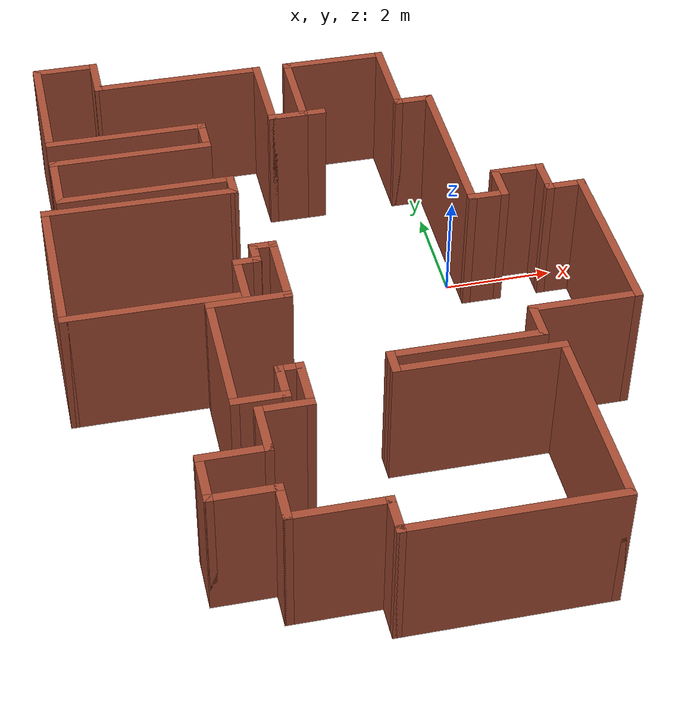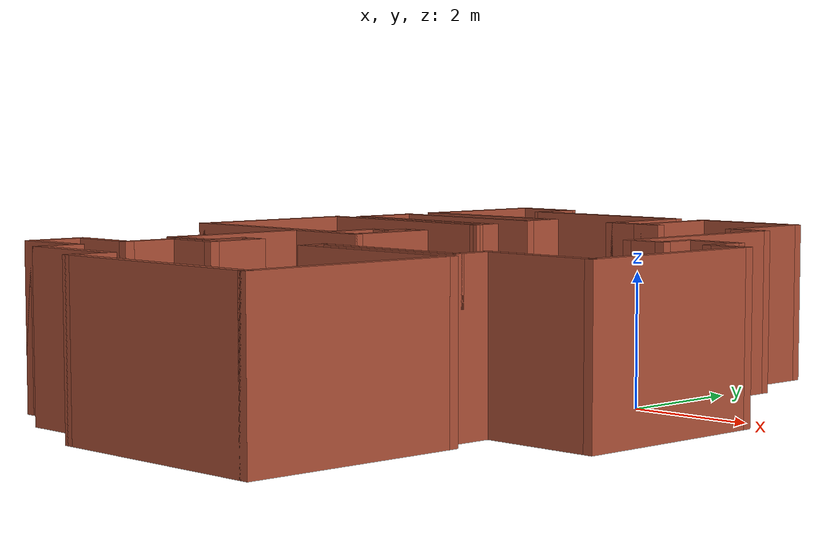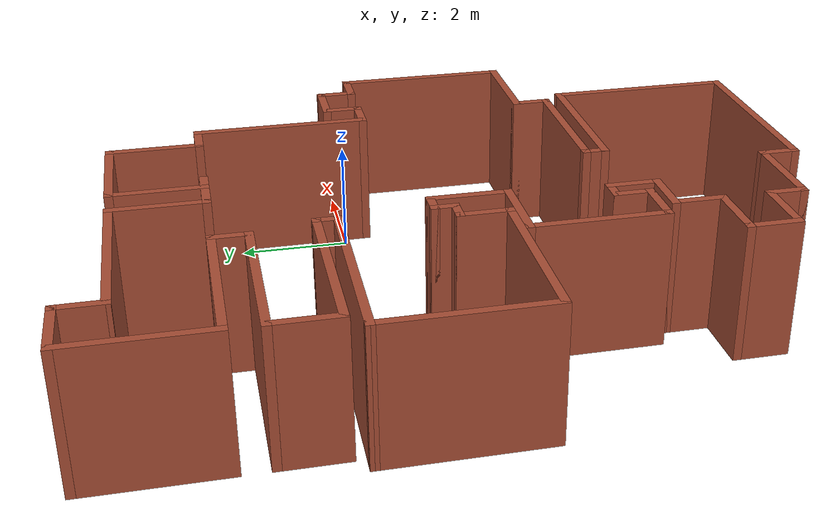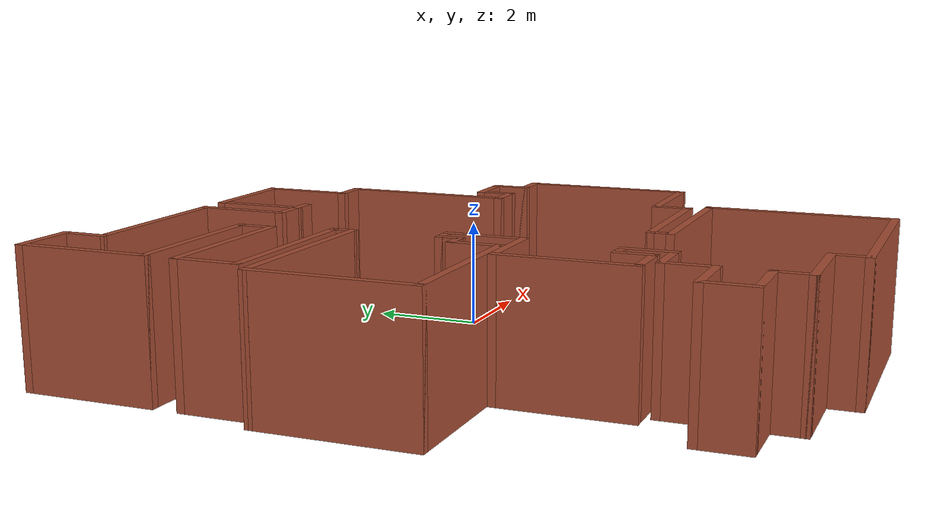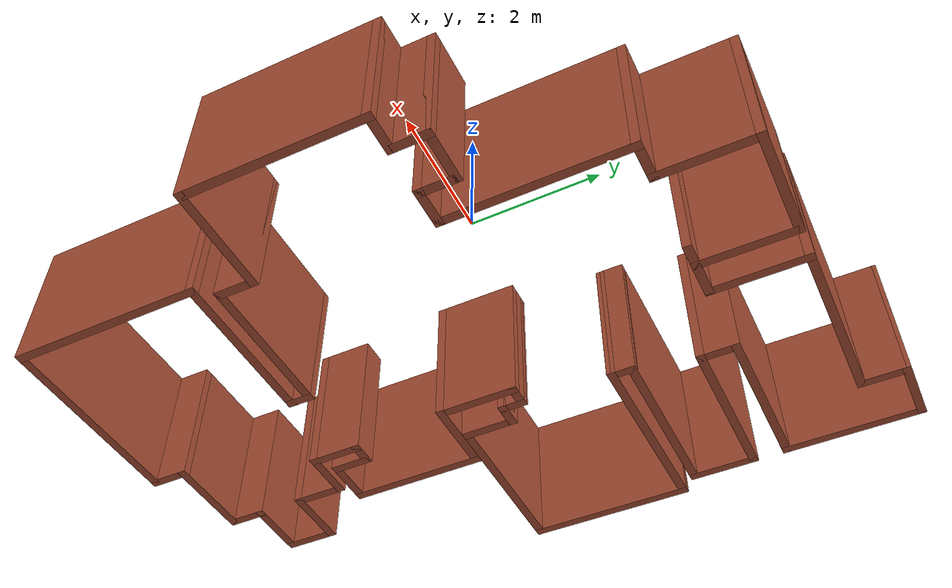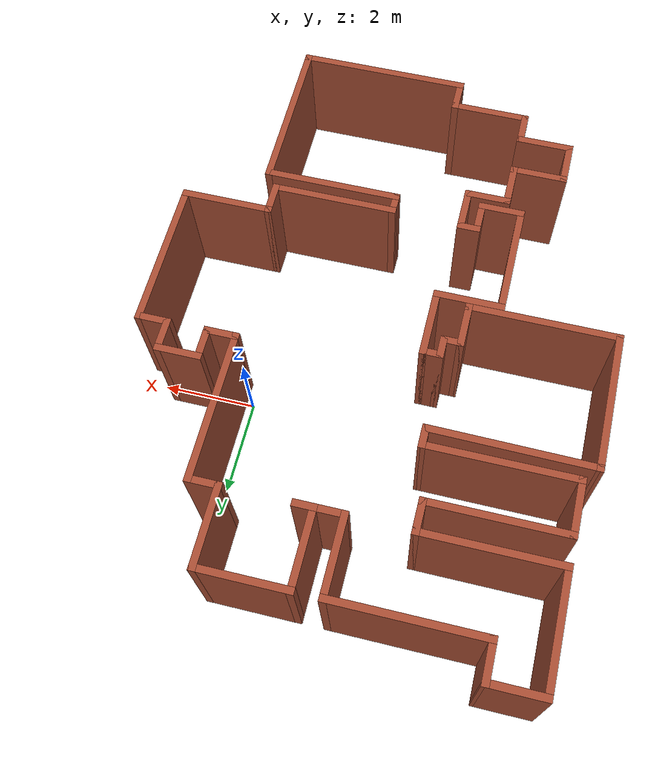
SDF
<?xml version='1.0'?>
<sdf version='1.6'>
  <model name='map_137'>
    <pose frame=''>-2.51966 -1.40306 0 0 -0 0</pose>
    <link name='Wall_0'>
      <collision name='Wall_0_Collision'>
        <geometry>
          <box>
            <size>1.25 0.15 2.5</size>
          </box>
        </geometry>
        <pose frame=''>0 0 1.25 0 -0 0</pose>
      </collision>
      <visual name='Wall_0_Visual'>
        <pose frame=''>0 0 1.25 0 -0 0</pose>
        <geometry>
          <box>
            <size>1.25 0.15 2.5</size>
          </box>
        </geometry>
        <material>
          <script>
            <uri>file://media/materials/scripts/gazebo.material</uri>
            <name>Gazebo/Bricks</name>
          </script>
          <ambient>1 1 1 1</ambient>
        </material>
        <meta>
          <layer>0</layer>
        </meta>
      </visual>
      <pose frame=''>-3.952 6.4311 0 0 -0 3.14159</pose>
    </link>
    <link name='Wall_1'>
      <collision name='Wall_1_Collision'>
        <geometry>
          <box>
            <size>2.5 0.15 2.5</size>
          </box>
        </geometry>
        <pose frame=''>0 0 1.25 0 -0 0</pose>
      </collision>
      <visual name='Wall_1_Visual'>
        <pose frame=''>0 0 1.25 0 -0 0</pose>
        <geometry>
          <box>
            <size>2.5 0.15 2.5</size>
          </box>
        </geometry>
        <material>
          <script>
            <uri>file://media/materials/scripts/gazebo.material</uri>
            <name>Gazebo/Bricks</name>
          </script>
          <ambient>1 1 1 1</ambient>
        </material>
        <meta>
          <layer>0</layer>
        </meta>
      </visual>
      <pose frame=''>-4.502 5.2561 0 0 -0 -1.5708</pose>
    </link>
    <link name='Wall_2'>
      <collision name='Wall_2_Collision'>
        <geometry>
          <box>
            <size>3 0.15 2.5</size>
          </box>
        </geometry>
        <pose frame=''>0 0 1.25 0 -0 0</pose>
      </collision>
      <visual name='Wall_2_Visual'>
        <pose frame=''>0 0 1.25 0 -0 0</pose>
        <geometry>
          <box>
            <size>3 0.15 2.5</size>
          </box>
        </geometry>
        <material>
          <script>
            <uri>file://media/materials/scripts/gazebo.material</uri>
            <name>Gazebo/Bricks</name>
          </script>
          <ambient>1 1 1 1</ambient>
        </material>
        <meta>
          <layer>0</layer>
        </meta>
      </visual>
      <pose frame=''>-3.077 4.0811 0 0 -0 0</pose>
    </link>
    <link name='Wall_20'>
      <collision name='Wall_20_Collision'>
        <geometry>
          <box>
            <size>3 0.15 2.5</size>
          </box>
        </geometry>
        <pose frame=''>0 0 1.25 0 -0 0</pose>
      </collision>
      <visual name='Wall_20_Visual'>
        <pose frame=''>0 0 1.25 0 -0 0</pose>
        <geometry>
          <box>
            <size>3 0.15 2.5</size>
          </box>
        </geometry>
        <material>
          <script>
            <uri>file://media/materials/scripts/gazebo.material</uri>
            <name>Gazebo/Bricks</name>
          </script>
          <ambient>1 1 1 1</ambient>
        </material>
        <meta>
          <layer>0</layer>
        </meta>
      </visual>
      <pose frame=''>-4.79959 0.643665 0 0 -0 -1.5708</pose>
    </link>
    <link name='Wall_21'>
      <collision name='Wall_21_Collision'>
        <geometry>
          <box>
            <size>3.25 0.15 2.5</size>
          </box>
        </geometry>
        <pose frame=''>0 0 1.25 0 -0 0</pose>
      </collision>
      <visual name='Wall_21_Visual'>
        <pose frame=''>0 0 1.25 0 -0 0</pose>
        <geometry>
          <box>
            <size>3.25 0.15 2.5</size>
          </box>
        </geometry>
        <material>
          <script>
            <uri>file://media/materials/scripts/gazebo.material</uri>
            <name>Gazebo/Bricks</name>
          </script>
          <ambient>1 1 1 1</ambient>
        </material>
        <meta>
          <layer>0</layer>
        </meta>
      </visual>
      <pose frame=''>-3.24959 -0.781335 0 0 -0 0</pose>
    </link>
    <link name='Wall_22'>
      <collision name='Wall_22_Collision'>
        <geometry>
          <box>
            <size>1 0.15 2.5</size>
          </box>
        </geometry>
        <pose frame=''>0 0 1.25 0 -0 0</pose>
      </collision>
      <visual name='Wall_22_Visual'>
        <pose frame=''>0 0 1.25 0 -0 0</pose>
        <geometry>
          <box>
            <size>1 0.15 2.5</size>
          </box>
        </geometry>
        <material>
          <script>
            <uri>file://media/materials/scripts/gazebo.material</uri>
            <name>Gazebo/Bricks</name>
          </script>
          <ambient>1 1 1 1</ambient>
        </material>
        <meta>
          <layer>0</layer>
        </meta>
      </visual>
      <pose frame=''>-1.69959 -0.356335 0 0 -0 1.5708</pose>
    </link>
    <link name='Wall_23'>
      <collision name='Wall_23_Collision'>
        <geometry>
          <box>
            <size>0.5 0.15 2.5</size>
          </box>
        </geometry>
        <pose frame=''>0 0 1.25 0 -0 0</pose>
      </collision>
      <visual name='Wall_23_Visual'>
        <pose frame=''>0 0 1.25 0 -0 0</pose>
        <geometry>
          <box>
            <size>0.5 0.15 2.5</size>
          </box>
        </geometry>
        <material>
          <script>
            <uri>file://media/materials/scripts/gazebo.material</uri>
            <name>Gazebo/Bricks</name>
          </script>
          <ambient>1 1 1 1</ambient>
        </material>
        <meta>
          <layer>0</layer>
        </meta>
      </visual>
      <pose frame=''>-1.52459 0.068665 0 0 -0 0</pose>
    </link>
    <link name='Wall_26'>
      <collision name='Wall_26_Collision'>
        <geometry>
          <box>
            <size>0.5 0.15 2.5</size>
          </box>
        </geometry>
        <pose frame=''>0 0 1.25 0 -0 0</pose>
      </collision>
      <visual name='Wall_26_Visual'>
        <pose frame=''>0 0 1.25 0 -0 0</pose>
        <geometry>
          <box>
            <size>0.5 0.15 2.5</size>
          </box>
        </geometry>
        <material>
          <script>
            <uri>file://media/materials/scripts/gazebo.material</uri>
            <name>Gazebo/Bricks</name>
          </script>
          <ambient>1 1 1 1</ambient>
        </material>
        <meta>
          <layer>0</layer>
        </meta>
      </visual>
      <pose frame=''>-1.34959 0.243665 0 0 -0 1.5708</pose>
    </link>
    <link name='Wall_27'>
      <collision name='Wall_27_Collision'>
        <geometry>
          <box>
            <size>0.5 0.15 2.5</size>
          </box>
        </geometry>
        <pose frame=''>0 0 1.25 0 -0 0</pose>
      </collision>
      <visual name='Wall_27_Visual'>
        <pose frame=''>0 0 1.25 0 -0 0</pose>
        <geometry>
          <box>
            <size>0.5 0.15 2.5</size>
          </box>
        </geometry>
        <material>
          <script>
            <uri>file://media/materials/scripts/gazebo.material</uri>
            <name>Gazebo/Bricks</name>
          </script>
          <ambient>1 1 1 1</ambient>
        </material>
        <meta>
          <layer>0</layer>
        </meta>
      </visual>
      <pose frame=''>-1.17459 0.418665 0 0 -0 0</pose>
    </link>
    <link name='Wall_28'>
      <collision name='Wall_28_Collision'>
        <geometry>
          <box>
            <size>1.5 0.15 2.5</size>
          </box>
        </geometry>
        <pose frame=''>0 0 1.25 0 -0 0</pose>
      </collision>
      <visual name='Wall_28_Visual'>
        <pose frame=''>0 0 1.25 0 -0 0</pose>
        <geometry>
          <box>
            <size>1.5 0.15 2.5</size>
          </box>
        </geometry>
        <material>
          <script>
            <uri>file://media/materials/scripts/gazebo.material</uri>
            <name>Gazebo/Bricks</name>
          </script>
          <ambient>1 1 1 1</ambient>
        </material>
        <meta>
          <layer>0</layer>
        </meta>
      </visual>
      <pose frame=''>-0.999588 -0.256335 0 0 -0 -1.5708</pose>
    </link>
    <link name='Wall_29'>
      <collision name='Wall_29_Collision'>
        <geometry>
          <box>
            <size>1.5 0.15 2.5</size>
          </box>
        </geometry>
        <pose frame=''>0 0 1.25 0 -0 0</pose>
      </collision>
      <visual name='Wall_29_Visual'>
        <pose frame=''>0 0 1.25 0 -0 0</pose>
        <geometry>
          <box>
            <size>1.5 0.15 2.5</size>
          </box>
        </geometry>
        <material>
          <script>
            <uri>file://media/materials/scripts/gazebo.material</uri>
            <name>Gazebo/Bricks</name>
          </script>
          <ambient>1 1 1 1</ambient>
        </material>
        <meta>
          <layer>0</layer>
        </meta>
      </visual>
      <pose frame=''>-1.67459 -0.931335 0 0 -0 3.14159</pose>
    </link>
    <link name='Wall_3'>
      <collision name='Wall_3_Collision'>
        <geometry>
          <box>
            <size>0.75 0.15 2.5</size>
          </box>
        </geometry>
        <pose frame=''>0 0 1.25 0 -0 0</pose>
      </collision>
      <visual name='Wall_3_Visual'>
        <pose frame=''>0 0 1.25 0 -0 0</pose>
        <geometry>
          <box>
            <size>0.75 0.15 2.5</size>
          </box>
        </geometry>
        <material>
          <script>
            <uri>file://media/materials/scripts/gazebo.material</uri>
            <name>Gazebo/Bricks</name>
          </script>
          <ambient>1 1 1 1</ambient>
        </material>
        <meta>
          <layer>0</layer>
        </meta>
      </visual>
      <pose frame=''>-1.652 3.7811 0 0 -0 -1.5708</pose>
    </link>
    <link name='Wall_30'>
      <collision name='Wall_30_Collision'>
        <geometry>
          <box>
            <size>2.5 0.15 2.5</size>
          </box>
        </geometry>
        <pose frame=''>0 0 1.25 0 -0 0</pose>
      </collision>
      <visual name='Wall_30_Visual'>
        <pose frame=''>0 0 1.25 0 -0 0</pose>
        <geometry>
          <box>
            <size>2.5 0.15 2.5</size>
          </box>
        </geometry>
        <material>
          <script>
            <uri>file://media/materials/scripts/gazebo.material</uri>
            <name>Gazebo/Bricks</name>
          </script>
          <ambient>1 1 1 1</ambient>
        </material>
        <meta>
          <layer>0</layer>
        </meta>
      </visual>
      <pose frame=''>-2.34959 -2.10634 0 0 -0 -1.5708</pose>
    </link>
    <link name='Wall_31'>
      <collision name='Wall_31_Collision'>
        <geometry>
          <box>
            <size>1 0.15 2.5</size>
          </box>
        </geometry>
        <pose frame=''>0 0 1.25 0 -0 0</pose>
      </collision>
      <visual name='Wall_31_Visual'>
        <pose frame=''>0 0 1.25 0 -0 0</pose>
        <geometry>
          <box>
            <size>1 0.15 2.5</size>
          </box>
        </geometry>
        <material>
          <script>
            <uri>file://media/materials/scripts/gazebo.material</uri>
            <name>Gazebo/Bricks</name>
          </script>
          <ambient>1 1 1 1</ambient>
        </material>
        <meta>
          <layer>0</layer>
        </meta>
      </visual>
      <pose frame=''>-1.92459 -3.28133 0 0 -0 0</pose>
    </link>
    <link name='Wall_32'>
      <collision name='Wall_32_Collision'>
        <geometry>
          <box>
            <size>0.75 0.15 2.5</size>
          </box>
        </geometry>
        <pose frame=''>0 0 1.25 0 -0 0</pose>
      </collision>
      <visual name='Wall_32_Visual'>
        <pose frame=''>0 0 1.25 0 -0 0</pose>
        <geometry>
          <box>
            <size>0.75 0.15 2.5</size>
          </box>
        </geometry>
        <material>
          <script>
            <uri>file://media/materials/scripts/gazebo.material</uri>
            <name>Gazebo/Bricks</name>
          </script>
          <ambient>1 1 1 1</ambient>
        </material>
        <meta>
          <layer>0</layer>
        </meta>
      </visual>
      <pose frame=''>-1.49959 -2.98134 0 0 -0 1.5708</pose>
    </link>
    <link name='Wall_33'>
      <collision name='Wall_33_Collision'>
        <geometry>
          <box>
            <size>0.5 0.15 2.5</size>
          </box>
        </geometry>
        <pose frame=''>0 0 1.25 0 -0 0</pose>
      </collision>
      <visual name='Wall_33_Visual'>
        <pose frame=''>0 0 1.25 0 -0 0</pose>
        <geometry>
          <box>
            <size>0.5 0.15 2.5</size>
          </box>
        </geometry>
        <material>
          <script>
            <uri>file://media/materials/scripts/gazebo.material</uri>
            <name>Gazebo/Bricks</name>
          </script>
          <ambient>1 1 1 1</ambient>
        </material>
        <meta>
          <layer>0</layer>
        </meta>
      </visual>
      <pose frame=''>-1.32459 -2.68133 0 0 -0 0</pose>
    </link>
    <link name='Wall_34'>
      <collision name='Wall_34_Collision'>
        <geometry>
          <box>
            <size>1 0.15 2.5</size>
          </box>
        </geometry>
        <pose frame=''>0 0 1.25 0 -0 0</pose>
      </collision>
      <visual name='Wall_34_Visual'>
        <pose frame=''>0 0 1.25 0 -0 0</pose>
        <geometry>
          <box>
            <size>1 0.15 2.5</size>
          </box>
        </geometry>
        <material>
          <script>
            <uri>file://media/materials/scripts/gazebo.material</uri>
            <name>Gazebo/Bricks</name>
          </script>
          <ambient>1 1 1 1</ambient>
        </material>
        <meta>
          <layer>0</layer>
        </meta>
      </visual>
      <pose frame=''>-1.14959 -3.10634 0 0 -0 -1.5708</pose>
    </link>
    <link name='Wall_35'>
      <collision name='Wall_35_Collision'>
        <geometry>
          <box>
            <size>1 0.15 2.5</size>
          </box>
        </geometry>
        <pose frame=''>0 0 1.25 0 -0 0</pose>
      </collision>
      <visual name='Wall_35_Visual'>
        <pose frame=''>0 0 1.25 0 -0 0</pose>
        <geometry>
          <box>
            <size>1 0.15 2.5</size>
          </box>
        </geometry>
        <material>
          <script>
            <uri>file://media/materials/scripts/gazebo.material</uri>
            <name>Gazebo/Bricks</name>
          </script>
          <ambient>1 1 1 1</ambient>
        </material>
        <meta>
          <layer>0</layer>
        </meta>
      </visual>
      <pose frame=''>-1.57459 -3.53133 0 0 -0 3.14159</pose>
    </link>
    <link name='Wall_36'>
      <collision name='Wall_36_Collision'>
        <geometry>
          <box>
            <size>1 0.15 2.5</size>
          </box>
        </geometry>
        <pose frame=''>0 0 1.25 0 -0 0</pose>
      </collision>
      <visual name='Wall_36_Visual'>
        <pose frame=''>0 0 1.25 0 -0 0</pose>
        <geometry>
          <box>
            <size>1 0.15 2.5</size>
          </box>
        </geometry>
        <material>
          <script>
            <uri>file://media/materials/scripts/gazebo.material</uri>
            <name>Gazebo/Bricks</name>
          </script>
          <ambient>1 1 1 1</ambient>
        </material>
        <meta>
          <layer>0</layer>
        </meta>
      </visual>
      <pose frame=''>-1.99959 -3.95634 0 0 -0 -1.5708</pose>
    </link>
    <link name='Wall_37'>
      <collision name='Wall_37_Collision'>
        <geometry>
          <box>
            <size>1.25 0.15 2.5</size>
          </box>
        </geometry>
        <pose frame=''>0 0 1.25 0 -0 0</pose>
      </collision>
      <visual name='Wall_37_Visual'>
        <pose frame=''>0 0 1.25 0 -0 0</pose>
        <geometry>
          <box>
            <size>1.25 0.15 2.5</size>
          </box>
        </geometry>
        <material>
          <script>
            <uri>file://media/materials/scripts/gazebo.material</uri>
            <name>Gazebo/Bricks</name>
          </script>
          <ambient>1 1 1 1</ambient>
        </material>
        <meta>
          <layer>0</layer>
        </meta>
      </visual>
      <pose frame=''>-2.54959 -4.38133 0 0 -0 3.14159</pose>
    </link>
    <link name='Wall_38'>
      <collision name='Wall_38_Collision'>
        <geometry>
          <box>
            <size>1 0.15 2.5</size>
          </box>
        </geometry>
        <pose frame=''>0 0 1.25 0 -0 0</pose>
      </collision>
      <visual name='Wall_38_Visual'>
        <pose frame=''>0 0 1.25 0 -0 0</pose>
        <geometry>
          <box>
            <size>1 0.15 2.5</size>
          </box>
        </geometry>
        <material>
          <script>
            <uri>file://media/materials/scripts/gazebo.material</uri>
            <name>Gazebo/Bricks</name>
          </script>
          <ambient>1 1 1 1</ambient>
        </material>
        <meta>
          <layer>0</layer>
        </meta>
      </visual>
      <pose frame=''>-3.09959 -4.80633 0 0 -0 -1.5708</pose>
    </link>
    <link name='Wall_39'>
      <collision name='Wall_39_Collision'>
        <geometry>
          <box>
            <size>1.25 0.15 2.5</size>
          </box>
        </geometry>
        <pose frame=''>0 0 1.25 0 -0 0</pose>
      </collision>
      <visual name='Wall_39_Visual'>
        <pose frame=''>0 0 1.25 0 -0 0</pose>
        <geometry>
          <box>
            <size>1.25 0.15 2.5</size>
          </box>
        </geometry>
        <material>
          <script>
            <uri>file://media/materials/scripts/gazebo.material</uri>
            <name>Gazebo/Bricks</name>
          </script>
          <ambient>1 1 1 1</ambient>
        </material>
        <meta>
          <layer>0</layer>
        </meta>
      </visual>
      <pose frame=''>-2.54959 -5.23133 0 0 -0 0</pose>
    </link>
    <link name='Wall_4'>
      <collision name='Wall_4_Collision'>
        <geometry>
          <box>
            <size>3 0.15 2.5</size>
          </box>
        </geometry>
        <pose frame=''>0 0 1.25 0 -0 0</pose>
      </collision>
      <visual name='Wall_4_Visual'>
        <pose frame=''>0 0 1.25 0 -0 0</pose>
        <geometry>
          <box>
            <size>3 0.15 2.5</size>
          </box>
        </geometry>
        <material>
          <script>
            <uri>file://media/materials/scripts/gazebo.material</uri>
            <name>Gazebo/Bricks</name>
          </script>
          <ambient>1 1 1 1</ambient>
        </material>
        <meta>
          <layer>0</layer>
        </meta>
      </visual>
      <pose frame=''>-3.077 3.4811 0 0 -0 3.14159</pose>
    </link>
    <link name='Wall_42'>
      <collision name='Wall_42_Collision'>
        <geometry>
          <box>
            <size>0.75 0.15 2.5</size>
          </box>
        </geometry>
        <pose frame=''>0 0 1.25 0 -0 0</pose>
      </collision>
      <visual name='Wall_42_Visual'>
        <pose frame=''>0 0 1.25 0 -0 0</pose>
        <geometry>
          <box>
            <size>0.75 0.15 2.5</size>
          </box>
        </geometry>
        <material>
          <script>
            <uri>file://media/materials/scripts/gazebo.material</uri>
            <name>Gazebo/Bricks</name>
          </script>
          <ambient>1 1 1 1</ambient>
        </material>
        <meta>
          <layer>0</layer>
        </meta>
      </visual>
      <pose frame=''>-1.99959 -5.53134 0 0 -0 -1.5708</pose>
    </link>
    <link name='Wall_43'>
      <collision name='Wall_43_Collision'>
        <geometry>
          <box>
            <size>1.75 0.15 2.5</size>
          </box>
        </geometry>
        <pose frame=''>0 0 1.25 0 -0 0</pose>
      </collision>
      <visual name='Wall_43_Visual'>
        <pose frame=''>0 0 1.25 0 -0 0</pose>
        <geometry>
          <box>
            <size>1.75 0.15 2.5</size>
          </box>
        </geometry>
        <material>
          <script>
            <uri>file://media/materials/scripts/gazebo.material</uri>
            <name>Gazebo/Bricks</name>
          </script>
          <ambient>1 1 1 1</ambient>
        </material>
        <meta>
          <layer>0</layer>
        </meta>
      </visual>
      <pose frame=''>-1.19959 -5.83134 0 0 -0 0</pose>
    </link>
    <link name='Wall_44'>
      <collision name='Wall_44_Collision'>
        <geometry>
          <box>
            <size>0.75 0.15 2.5</size>
          </box>
        </geometry>
        <pose frame=''>0 0 1.25 0 -0 0</pose>
      </collision>
      <visual name='Wall_44_Visual'>
        <pose frame=''>0 0 1.25 0 -0 0</pose>
        <geometry>
          <box>
            <size>0.75 0.15 2.5</size>
          </box>
        </geometry>
        <material>
          <script>
            <uri>file://media/materials/scripts/gazebo.material</uri>
            <name>Gazebo/Bricks</name>
          </script>
          <ambient>1 1 1 1</ambient>
        </material>
        <meta>
          <layer>0</layer>
        </meta>
      </visual>
      <pose frame=''>-0.399588 -6.13133 0 0 -0 -1.5708</pose>
    </link>
    <link name='Wall_45'>
      <collision name='Wall_45_Collision'>
        <geometry>
          <box>
            <size>3.75 0.15 2.5</size>
          </box>
        </geometry>
        <pose frame=''>0 0 1.25 0 -0 0</pose>
      </collision>
      <visual name='Wall_45_Visual'>
        <pose frame=''>0 0 1.25 0 -0 0</pose>
        <geometry>
          <box>
            <size>3.75 0.15 2.5</size>
          </box>
        </geometry>
        <material>
          <script>
            <uri>file://media/materials/scripts/gazebo.material</uri>
            <name>Gazebo/Bricks</name>
          </script>
          <ambient>1 1 1 1</ambient>
        </material>
        <meta>
          <layer>0</layer>
        </meta>
      </visual>
      <pose frame=''>1.40041 -6.43133 0 0 -0 0</pose>
    </link>
    <link name='Wall_46'>
      <collision name='Wall_46_Collision'>
        <geometry>
          <box>
            <size>3.5 0.15 2.5</size>
          </box>
        </geometry>
        <pose frame=''>0 0 1.25 0 -0 0</pose>
      </collision>
      <visual name='Wall_46_Visual'>
        <pose frame=''>0 0 1.25 0 -0 0</pose>
        <geometry>
          <box>
            <size>3.5 0.15 2.5</size>
          </box>
        </geometry>
        <material>
          <script>
            <uri>file://media/materials/scripts/gazebo.material</uri>
            <name>Gazebo/Bricks</name>
          </script>
          <ambient>1 1 1 1</ambient>
        </material>
        <meta>
          <layer>0</layer>
        </meta>
      </visual>
      <pose frame=''>3.20041 -4.75633 0 0 -0 1.5708</pose>
    </link>
    <link name='Wall_47'>
      <collision name='Wall_47_Collision'>
        <geometry>
          <box>
            <size>3 0.15 2.5</size>
          </box>
        </geometry>
        <pose frame=''>0 0 1.25 0 -0 0</pose>
      </collision>
      <visual name='Wall_47_Visual'>
        <pose frame=''>0 0 1.25 0 -0 0</pose>
        <geometry>
          <box>
            <size>3 0.15 2.5</size>
          </box>
        </geometry>
        <material>
          <script>
            <uri>file://media/materials/scripts/gazebo.material</uri>
            <name>Gazebo/Bricks</name>
          </script>
          <ambient>1 1 1 1</ambient>
        </material>
        <meta>
          <layer>0</layer>
        </meta>
      </visual>
      <pose frame=''>1.77541 -3.08134 0 0 -0 3.14159</pose>
    </link>
    <link name='Wall_48'>
      <collision name='Wall_48_Collision'>
        <geometry>
          <box>
            <size>0.5 0.15 2.5</size>
          </box>
        </geometry>
        <pose frame=''>0 0 1.25 0 -0 0</pose>
      </collision>
      <visual name='Wall_48_Visual'>
        <pose frame=''>0 0 1.25 0 -0 0</pose>
        <geometry>
          <box>
            <size>0.5 0.15 2.5</size>
          </box>
        </geometry>
        <material>
          <script>
            <uri>file://media/materials/scripts/gazebo.material</uri>
            <name>Gazebo/Bricks</name>
          </script>
          <ambient>1 1 1 1</ambient>
        </material>
        <meta>
          <layer>0</layer>
        </meta>
      </visual>
      <pose frame=''>0.350412 -2.90633 0 0 -0 1.5708</pose>
    </link>
    <link name='Wall_49'>
      <collision name='Wall_49_Collision'>
        <geometry>
          <box>
            <size>2.75 0.15 2.5</size>
          </box>
        </geometry>
        <pose frame=''>0 0 1.25 0 -0 0</pose>
      </collision>
      <visual name='Wall_49_Visual'>
        <pose frame=''>0 0 1.25 0 -0 0</pose>
        <geometry>
          <box>
            <size>2.75 0.15 2.5</size>
          </box>
        </geometry>
        <material>
          <script>
            <uri>file://media/materials/scripts/gazebo.material</uri>
            <name>Gazebo/Bricks</name>
          </script>
          <ambient>1 1 1 1</ambient>
        </material>
        <meta>
          <layer>0</layer>
        </meta>
      </visual>
      <pose frame=''>1.65041 -2.73134 0 0 -0 0</pose>
    </link>
    <link name='Wall_5'>
      <collision name='Wall_5_Collision'>
        <geometry>
          <box>
            <size>1.25 0.15 2.5</size>
          </box>
        </geometry>
        <pose frame=''>0 0 1.25 0 -0 0</pose>
      </collision>
      <visual name='Wall_5_Visual'>
        <pose frame=''>0 0 1.25 0 -0 0</pose>
        <geometry>
          <box>
            <size>1.25 0.15 2.5</size>
          </box>
        </geometry>
        <material>
          <script>
            <uri>file://media/materials/scripts/gazebo.material</uri>
            <name>Gazebo/Bricks</name>
          </script>
          <ambient>1 1 1 1</ambient>
        </material>
        <meta>
          <layer>0</layer>
        </meta>
      </visual>
      <pose frame=''>-4.502 2.9311 0 0 -0 -1.5708</pose>
    </link>
    <link name='Wall_50'>
      <collision name='Wall_50_Collision'>
        <geometry>
          <box>
            <size>0.75 0.15 2.5</size>
          </box>
        </geometry>
        <pose frame=''>0 0 1.25 0 -0 0</pose>
      </collision>
      <visual name='Wall_50_Visual'>
        <pose frame=''>0 0 1.25 0 -0 0</pose>
        <geometry>
          <box>
            <size>0.75 0.15 2.5</size>
          </box>
        </geometry>
        <material>
          <script>
            <uri>file://media/materials/scripts/gazebo.material</uri>
            <name>Gazebo/Bricks</name>
          </script>
          <ambient>1 1 1 1</ambient>
        </material>
        <meta>
          <layer>0</layer>
        </meta>
      </visual>
      <pose frame=''>2.95041 -2.43133 0 0 -0 1.5708</pose>
    </link>
    <link name='Wall_51'>
      <collision name='Wall_51_Collision'>
        <geometry>
          <box>
            <size>2 0.15 2.5</size>
          </box>
        </geometry>
        <pose frame=''>0 0 1.25 0 -0 0</pose>
      </collision>
      <visual name='Wall_51_Visual'>
        <pose frame=''>0 0 1.25 0 -0 0</pose>
        <geometry>
          <box>
            <size>2 0.15 2.5</size>
          </box>
        </geometry>
        <material>
          <script>
            <uri>file://media/materials/scripts/gazebo.material</uri>
            <name>Gazebo/Bricks</name>
          </script>
          <ambient>1 1 1 1</ambient>
        </material>
        <meta>
          <layer>0</layer>
        </meta>
      </visual>
      <pose frame=''>3.87541 -2.13133 0 0 -0 0</pose>
    </link>
    <link name='Wall_52'>
      <collision name='Wall_52_Collision'>
        <geometry>
          <box>
            <size>3.25 0.15 2.5</size>
          </box>
        </geometry>
        <pose frame=''>0 0 1.25 0 -0 0</pose>
      </collision>
      <visual name='Wall_52_Visual'>
        <pose frame=''>0 0 1.25 0 -0 0</pose>
        <geometry>
          <box>
            <size>3.25 0.15 2.5</size>
          </box>
        </geometry>
        <material>
          <script>
            <uri>file://media/materials/scripts/gazebo.material</uri>
            <name>Gazebo/Bricks</name>
          </script>
          <ambient>1 1 1 1</ambient>
        </material>
        <meta>
          <layer>0</layer>
        </meta>
      </visual>
      <pose frame=''>4.80041 -0.581335 0 0 -0 1.5708</pose>
    </link>
    <link name='Wall_53'>
      <collision name='Wall_53_Collision'>
        <geometry>
          <box>
            <size>0.75 0.15 2.5</size>
          </box>
        </geometry>
        <pose frame=''>0 0 1.25 0 -0 0</pose>
      </collision>
      <visual name='Wall_53_Visual'>
        <pose frame=''>0 0 1.25 0 -0 0</pose>
        <geometry>
          <box>
            <size>0.75 0.15 2.5</size>
          </box>
        </geometry>
        <material>
          <script>
            <uri>file://media/materials/scripts/gazebo.material</uri>
            <name>Gazebo/Bricks</name>
          </script>
          <ambient>1 1 1 1</ambient>
        </material>
        <meta>
          <layer>0</layer>
        </meta>
      </visual>
      <pose frame=''>4.50041 0.968665 0 0 -0 3.14159</pose>
    </link>
    <link name='Wall_54'>
      <collision name='Wall_54_Collision'>
        <geometry>
          <box>
            <size>0.75 0.15 2.5</size>
          </box>
        </geometry>
        <pose frame=''>0 0 1.25 0 -0 0</pose>
      </collision>
      <visual name='Wall_54_Visual'>
        <pose frame=''>0 0 1.25 0 -0 0</pose>
        <geometry>
          <box>
            <size>0.75 0.15 2.5</size>
          </box>
        </geometry>
        <material>
          <script>
            <uri>file://media/materials/scripts/gazebo.material</uri>
            <name>Gazebo/Bricks</name>
          </script>
          <ambient>1 1 1 1</ambient>
        </material>
        <meta>
          <layer>0</layer>
        </meta>
      </visual>
      <pose frame=''>4.20041 1.26866 0 0 -0 1.5708</pose>
    </link>
    <link name='Wall_55'>
      <collision name='Wall_55_Collision'>
        <geometry>
          <box>
            <size>1 0.15 2.5</size>
          </box>
        </geometry>
        <pose frame=''>0 0 1.25 0 -0 0</pose>
      </collision>
      <visual name='Wall_55_Visual'>
        <pose frame=''>0 0 1.25 0 -0 0</pose>
        <geometry>
          <box>
            <size>1 0.15 2.5</size>
          </box>
        </geometry>
        <material>
          <script>
            <uri>file://media/materials/scripts/gazebo.material</uri>
            <name>Gazebo/Bricks</name>
          </script>
          <ambient>1 1 1 1</ambient>
        </material>
        <meta>
          <layer>0</layer>
        </meta>
      </visual>
      <pose frame=''>3.77541 1.56866 0 0 -0 3.14159</pose>
    </link>
    <link name='Wall_56'>
      <collision name='Wall_56_Collision'>
        <geometry>
          <box>
            <size>0.75 0.15 2.5</size>
          </box>
        </geometry>
        <pose frame=''>0 0 1.25 0 -0 0</pose>
      </collision>
      <visual name='Wall_56_Visual'>
        <pose frame=''>0 0 1.25 0 -0 0</pose>
        <geometry>
          <box>
            <size>0.75 0.15 2.5</size>
          </box>
        </geometry>
        <material>
          <script>
            <uri>file://media/materials/scripts/gazebo.material</uri>
            <name>Gazebo/Bricks</name>
          </script>
          <ambient>1 1 1 1</ambient>
        </material>
        <meta>
          <layer>0</layer>
        </meta>
      </visual>
      <pose frame=''>3.35041 1.26866 0 0 -0 -1.5708</pose>
    </link>
    <link name='Wall_57'>
      <collision name='Wall_57_Collision'>
        <geometry>
          <box>
            <size>0.75 0.15 2.5</size>
          </box>
        </geometry>
        <pose frame=''>0 0 1.25 0 -0 0</pose>
      </collision>
      <visual name='Wall_57_Visual'>
        <pose frame=''>0 0 1.25 0 -0 0</pose>
        <geometry>
          <box>
            <size>0.75 0.15 2.5</size>
          </box>
        </geometry>
        <material>
          <script>
            <uri>file://media/materials/scripts/gazebo.material</uri>
            <name>Gazebo/Bricks</name>
          </script>
          <ambient>1 1 1 1</ambient>
        </material>
        <meta>
          <layer>0</layer>
        </meta>
      </visual>
      <pose frame=''>3.05041 0.968665 0 0 -0 3.14159</pose>
    </link>
    <link name='Wall_58'>
      <collision name='Wall_58_Collision'>
        <geometry>
          <box>
            <size>3.25 0.15 2.5</size>
          </box>
        </geometry>
        <pose frame=''>0 0 1.25 0 -0 0</pose>
      </collision>
      <visual name='Wall_58_Visual'>
        <pose frame=''>0 0 1.25 0 -0 0</pose>
        <geometry>
          <box>
            <size>3.25 0.15 2.5</size>
          </box>
        </geometry>
        <material>
          <script>
            <uri>file://media/materials/scripts/gazebo.material</uri>
            <name>Gazebo/Bricks</name>
          </script>
          <ambient>1 1 1 1</ambient>
        </material>
        <meta>
          <layer>0</layer>
        </meta>
      </visual>
      <pose frame=''>2.75041 2.51866 0 0 -0 1.5708</pose>
    </link>
    <link name='Wall_59'>
      <collision name='Wall_59_Collision'>
        <geometry>
          <box>
            <size>0.75 0.15 2.5</size>
          </box>
        </geometry>
        <pose frame=''>0 0 1.25 0 -0 0</pose>
      </collision>
      <visual name='Wall_59_Visual'>
        <pose frame=''>0 0 1.25 0 -0 0</pose>
        <geometry>
          <box>
            <size>0.75 0.15 2.5</size>
          </box>
        </geometry>
        <material>
          <script>
            <uri>file://media/materials/scripts/gazebo.material</uri>
            <name>Gazebo/Bricks</name>
          </script>
          <ambient>1 1 1 1</ambient>
        </material>
        <meta>
          <layer>0</layer>
        </meta>
      </visual>
      <pose frame=''>2.45041 4.06867 0 0 -0 3.14159</pose>
    </link>
    <link name='Wall_6'>
      <collision name='Wall_6_Collision'>
        <geometry>
          <box>
            <size>3.25 0.15 2.5</size>
          </box>
        </geometry>
        <pose frame=''>0 0 1.25 0 -0 0</pose>
      </collision>
      <visual name='Wall_6_Visual'>
        <pose frame=''>0 0 1.25 0 -0 0</pose>
        <geometry>
          <box>
            <size>3.25 0.15 2.5</size>
          </box>
        </geometry>
        <material>
          <script>
            <uri>file://media/materials/scripts/gazebo.material</uri>
            <name>Gazebo/Bricks</name>
          </script>
          <ambient>1 1 1 1</ambient>
        </material>
        <meta>
          <layer>0</layer>
        </meta>
      </visual>
      <pose frame=''>-2.952 2.3811 0 0 -0 0</pose>
    </link>
    <link name='Wall_60'>
      <collision name='Wall_60_Collision'>
        <geometry>
          <box>
            <size>1.75 0.15 2.5</size>
          </box>
        </geometry>
        <pose frame=''>0 0 1.25 0 -0 0</pose>
      </collision>
      <visual name='Wall_60_Visual'>
        <pose frame=''>0 0 1.25 0 -0 0</pose>
        <geometry>
          <box>
            <size>1.75 0.15 2.5</size>
          </box>
        </geometry>
        <material>
          <script>
            <uri>file://media/materials/scripts/gazebo.material</uri>
            <name>Gazebo/Bricks</name>
          </script>
          <ambient>1 1 1 1</ambient>
        </material>
        <meta>
          <layer>0</layer>
        </meta>
      </visual>
      <pose frame=''>2.15041 4.86867 0 0 -0 1.5708</pose>
    </link>
    <link name='Wall_61'>
      <collision name='Wall_61_Collision'>
        <geometry>
          <box>
            <size>2 0.15 2.5</size>
          </box>
        </geometry>
        <pose frame=''>0 0 1.25 0 -0 0</pose>
      </collision>
      <visual name='Wall_61_Visual'>
        <pose frame=''>0 0 1.25 0 -0 0</pose>
        <geometry>
          <box>
            <size>2 0.15 2.5</size>
          </box>
        </geometry>
        <material>
          <script>
            <uri>file://media/materials/scripts/gazebo.material</uri>
            <name>Gazebo/Bricks</name>
          </script>
          <ambient>1 1 1 1</ambient>
        </material>
        <meta>
          <layer>0</layer>
        </meta>
      </visual>
      <pose frame=''>1.22541 5.66866 0 0 -0 3.14159</pose>
    </link>
    <link name='Wall_62'>
      <collision name='Wall_62_Collision'>
        <geometry>
          <box>
            <size>1.75 0.15 2.5</size>
          </box>
        </geometry>
        <pose frame=''>0 0 1.25 0 -0 0</pose>
      </collision>
      <visual name='Wall_62_Visual'>
        <pose frame=''>0 0 1.25 0 -0 0</pose>
        <geometry>
          <box>
            <size>1.75 0.15 2.5</size>
          </box>
        </geometry>
        <material>
          <script>
            <uri>file://media/materials/scripts/gazebo.material</uri>
            <name>Gazebo/Bricks</name>
          </script>
          <ambient>1 1 1 1</ambient>
        </material>
        <meta>
          <layer>0</layer>
        </meta>
      </visual>
      <pose frame=''>0.300412 4.86867 0 0 -0 -1.5708</pose>
    </link>
    <link name='Wall_63'>
      <collision name='Wall_63_Collision'>
        <geometry>
          <box>
            <size>0.75 0.15 2.5</size>
          </box>
        </geometry>
        <pose frame=''>0 0 1.25 0 -0 0</pose>
      </collision>
      <visual name='Wall_63_Visual'>
        <pose frame=''>0 0 1.25 0 -0 0</pose>
        <geometry>
          <box>
            <size>0.75 0.15 2.5</size>
          </box>
        </geometry>
        <material>
          <script>
            <uri>file://media/materials/scripts/gazebo.material</uri>
            <name>Gazebo/Bricks</name>
          </script>
          <ambient>1 1 1 1</ambient>
        </material>
        <meta>
          <layer>0</layer>
        </meta>
      </visual>
      <pose frame=''>0.000412 4.06867 0 0 -0 3.14159</pose>
    </link>
    <link name='Wall_64'>
      <collision name='Wall_64_Collision'>
        <geometry>
          <box>
            <size>1.75 0.15 2.5</size>
          </box>
        </geometry>
        <pose frame=''>0 0 1.25 0 -0 0</pose>
      </collision>
      <visual name='Wall_64_Visual'>
        <pose frame=''>0 0 1.25 0 -0 0</pose>
        <geometry>
          <box>
            <size>1.75 0.15 2.5</size>
          </box>
        </geometry>
        <material>
          <script>
            <uri>file://media/materials/scripts/gazebo.material</uri>
            <name>Gazebo/Bricks</name>
          </script>
          <ambient>1 1 1 1</ambient>
        </material>
        <meta>
          <layer>0</layer>
        </meta>
      </visual>
      <pose frame=''>-0.299588 4.86867 0 0 -0 1.5708</pose>
    </link>
    <link name='Wall_67'>
      <collision name='Wall_67_Collision'>
        <geometry>
          <box>
            <size>3.25 0.15 2.5</size>
          </box>
        </geometry>
        <pose frame=''>0 0 1.25 0 -0 0</pose>
      </collision>
      <visual name='Wall_67_Visual'>
        <pose frame=''>0 0 1.25 0 -0 0</pose>
        <geometry>
          <box>
            <size>3.25 0.15 2.5</size>
          </box>
        </geometry>
        <material>
          <script>
            <uri>file://media/materials/scripts/gazebo.material</uri>
            <name>Gazebo/Bricks</name>
          </script>
          <ambient>1 1 1 1</ambient>
        </material>
        <meta>
          <layer>0</layer>
        </meta>
      </visual>
      <pose frame=''>-1.84959 5.66866 0 0 -0 3.14159</pose>
    </link>
    <link name='Wall_68'>
      <collision name='Wall_68_Collision'>
        <geometry>
          <box>
            <size>0.912436 0.15 2.5</size>
          </box>
        </geometry>
        <pose frame=''>0 0 1.25 0 -0 0</pose>
      </collision>
      <visual name='Wall_68_Visual'>
        <pose frame=''>0 0 1.25 0 -0 0</pose>
        <geometry>
          <box>
            <size>0.912436 0.15 2.5</size>
          </box>
        </geometry>
        <material>
          <script>
            <uri>file://media/materials/scripts/gazebo.material</uri>
            <name>Gazebo/Bricks</name>
          </script>
          <ambient>1 1 1 1</ambient>
        </material>
        <meta>
          <layer>0</layer>
        </meta>
      </visual>
      <pose frame=''>-3.40079 6.04988 0 0 -0 1.57396</pose>
    </link>
    <link name='Wall_7'>
      <collision name='Wall_7_Collision'>
        <geometry>
          <box>
            <size>0.5 0.15 2.5</size>
          </box>
        </geometry>
        <pose frame=''>0 0 1.25 0 -0 0</pose>
      </collision>
      <visual name='Wall_7_Visual'>
        <pose frame=''>0 0 1.25 0 -0 0</pose>
        <geometry>
          <box>
            <size>0.5 0.15 2.5</size>
          </box>
        </geometry>
        <material>
          <script>
            <uri>file://media/materials/scripts/gazebo.material</uri>
            <name>Gazebo/Bricks</name>
          </script>
          <ambient>1 1 1 1</ambient>
        </material>
        <meta>
          <layer>0</layer>
        </meta>
      </visual>
      <pose frame=''>-1.402 2.2061 0 0 -0 -1.5708</pose>
    </link>
    <link name='Wall_70'>
      <collision name='Wall_70_Collision'>
        <geometry>
          <box>
            <size>0.5 0.15 2.5</size>
          </box>
        </geometry>
        <pose frame=''>0 0 1.25 0 -0 0</pose>
      </collision>
      <visual name='Wall_70_Visual'>
        <pose frame=''>0 0 1.25 0 -0 0</pose>
        <geometry>
          <box>
            <size>0.5 0.15 2.5</size>
          </box>
        </geometry>
        <material>
          <script>
            <uri>file://media/materials/scripts/gazebo.material</uri>
            <name>Gazebo/Bricks</name>
          </script>
          <ambient>1 1 1 1</ambient>
        </material>
        <meta>
          <layer>0</layer>
        </meta>
      </visual>
      <pose frame=''>0.475412 4.06867 0 0 -0 0</pose>
    </link>
    <link name='Wall_72'>
      <collision name='Wall_72_Collision'>
        <geometry>
          <box>
            <size>3.54779 0.15 2.5</size>
          </box>
        </geometry>
        <pose frame=''>0 0 1.25 0 -0 0</pose>
      </collision>
      <visual name='Wall_72_Visual'>
        <pose frame=''>0 0 1.25 0 -0 0</pose>
        <geometry>
          <box>
            <size>3.54779 0.15 2.5</size>
          </box>
        </geometry>
        <material>
          <script>
            <uri>file://media/materials/scripts/gazebo.material</uri>
            <name>Gazebo/Bricks</name>
          </script>
          <ambient>1 1 1 1</ambient>
        </material>
        <meta>
          <layer>0</layer>
        </meta>
      </visual>
      <pose frame=''>-3.10079 2.04988 0 0 -0 -0.011057</pose>
    </link>
    <static>1</static>
  </model>
</sdf>
